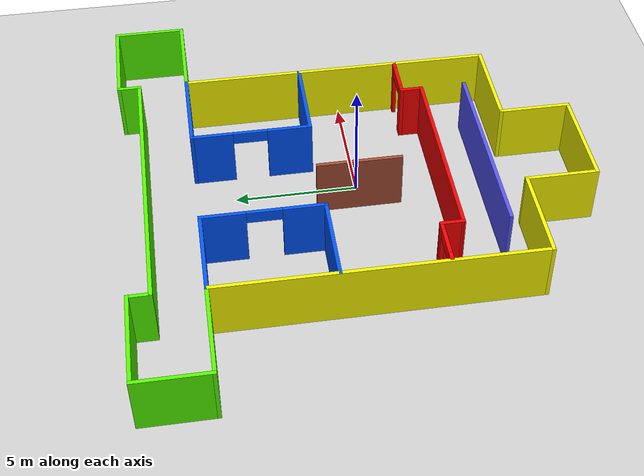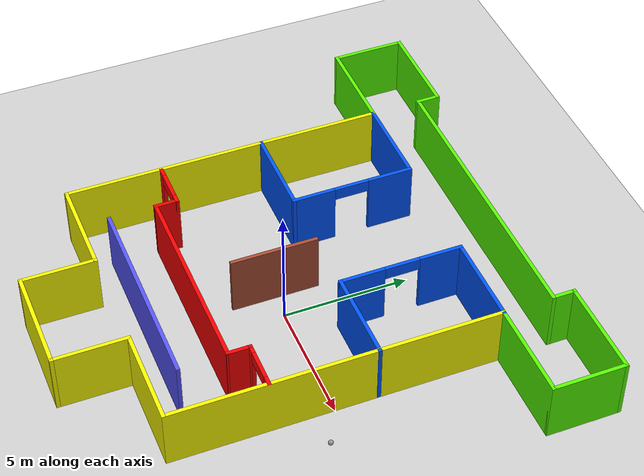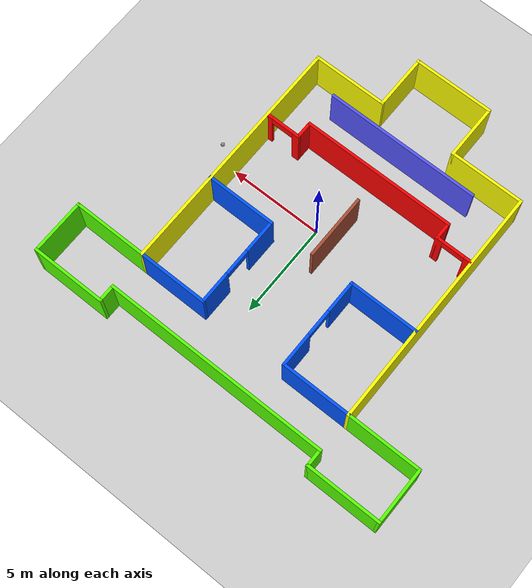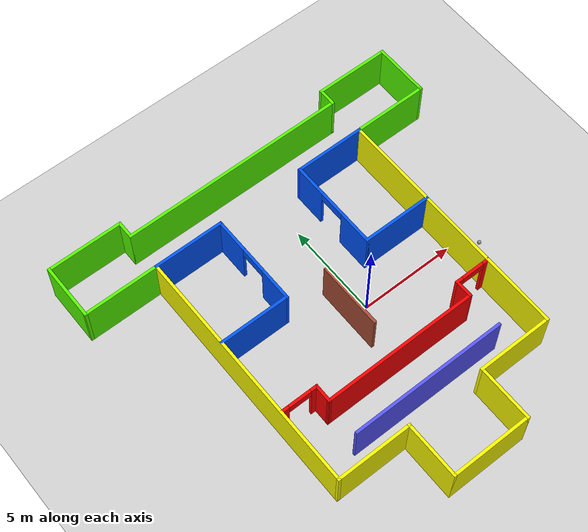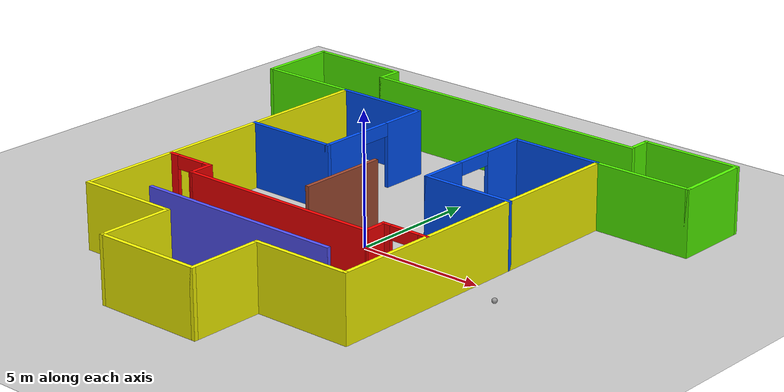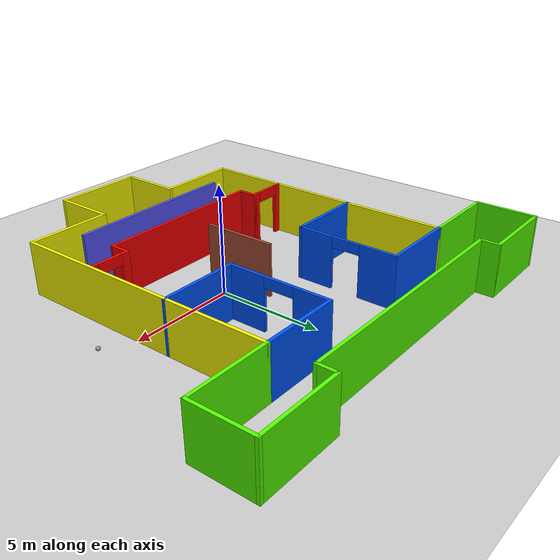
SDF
<sdf version="1.7">
 <world name="default">
  <light name="sun" type="directional">
   <pose>0 0 10 0 -0 0</pose>
   <diffuse>0.8 0.8 0.8 1</diffuse>
   <specular>0.2 0.2 0.2 1</specular>
   <attenuation>
    <range>1000</range>
    <constant>0.9</constant>
    <linear>0.01</linear>
    <quadratic>0.001</quadratic>
   </attenuation>
   <direction>-0.5 0.1 -0.9</direction>
   <spot><inner_angle>0</inner_angle><outer_angle>0</outer_angle><falloff>0</falloff></spot>
  </light>
  <model name="ground_plane">
   <static>1</static>
   <link name="link">
    <collision name="collision">
     <geometry><plane><normal>0 0 1</normal><size>100 100</size></plane></geometry>
     <surface>
      <contact><collide_bitmask>65535</collide_bitmask></contact>
      <friction><ode><mu>100</mu><mu2>50</mu2></ode></friction>
     </surface>
    </collision>
    <visual name="visual">
     <cast_shadows>0</cast_shadows>
     <geometry><plane><normal>0 0 1</normal><size>100 100</size></plane></geometry>
     <material>
      <script><uri>file://media/materials/scripts/gazebo.material</uri><name>Gazebo/Grey</name></script>
     </material>
    </visual>
   </link>
  </model>
  <gravity>0 0 -9.8</gravity>
  <magnetic_field>6e-06 2.3e-05 -4.2e-05</magnetic_field>
  <atmosphere type="adiabatic"/>
  <physics name="default_physics" default="0" type="ode">
   <max_step_size>0.001</max_step_size>
   <real_time_factor>1</real_time_factor>
   <real_time_update_rate>1000</real_time_update_rate>
  </physics>
  <scene><ambient>0.4 0.4 0.4 1</ambient><background>0.7 0.7 0.7 1</background><shadows>1</shadows></scene>
  <spherical_coordinates>
   <surface_model>EARTH_WGS84</surface_model>
   <latitude_deg>0</latitude_deg>
   <longitude_deg>0</longitude_deg>
   <elevation>0</elevation>
   <heading_deg>0</heading_deg>
  </spherical_coordinates>
  <model name="World3">
   <pose>-0.9828 0.13151 0 0 -0 0</pose>
   <link name="Wall_10">
    <collision name="Wall_10_Collision">
     <geometry><box><size>3 0.15 2.5</size></box></geometry>
     <pose>0 0 1.25 0 -0 0</pose>
    </collision>
    <visual name="Wall_10_Visual">
     <pose>0 0 1.25 0 -0 0</pose>
     <geometry><box><size>3 0.15 2.5</size></box></geometry>
     <material>
      <script><uri>file://media/materials/scripts/gazebo.material</uri><name>Gazebo/Grey</name></script>
      <ambient>0.333333 1 0 1</ambient>
     </material>
     <meta><layer>0</layer></meta>
    </visual>
    <pose>-9.775 7.85 0 0 -0 1.5708</pose>
   </link>
   <link name="Wall_11">
    <collision name="Wall_11_Collision">
     <geometry><box><size>4 0.15 2.5</size></box></geometry>
     <pose>0 0 1.25 0 -0 0</pose>
    </collision>
    <visual name="Wall_11_Visual">
     <pose>0 0 1.25 0 -0 0</pose>
     <geometry><box><size>4 0.15 2.5</size></box></geometry>
     <material>
      <script><uri>file://media/materials/scripts/gazebo.material</uri><name>Gazebo/Grey</name></script>
      <ambient>0.333333 1 0 1</ambient>
     </material>
     <meta><layer>0</layer></meta>
    </visual>
    <pose>-7.85 9.275 0 0 -0 0</pose>
   </link>
   <link name="Wall_12">
    <collision name="Wall_12_Collision">
     <geometry><box><size>1 0.15 2.5</size></box></geometry>
     <pose>0 0 1.25 0 -0 0</pose>
    </collision>
    <visual name="Wall_12_Visual">
     <pose>0 0 1.25 0 -0 0</pose>
     <geometry><box><size>1 0.15 2.5</size></box></geometry>
     <material>
      <script><uri>file://media/materials/scripts/gazebo.material</uri><name>Gazebo/Grey</name></script>
      <ambient>0.333333 1 0 1</ambient>
     </material>
     <meta><layer>0</layer></meta>
    </visual>
    <pose>-5.925 8.85 0 0 0 -1.5708</pose>
   </link>
   <link name="Wall_14">
    <collision name="Wall_14_Collision">
     <geometry><box><size>4 0.15 2.5</size></box></geometry>
     <pose>0 0 1.25 0 -0 0</pose>
    </collision>
    <visual name="Wall_14_Visual">
     <pose>0 0 1.25 0 -0 0</pose>
     <geometry><box><size>4 0.15 2.5</size></box></geometry>
     <material>
      <script><uri>file://media/materials/scripts/gazebo.material</uri><name>Gazebo/Grey</name></script>
      <ambient>0.333333 1 0 1</ambient>
     </material>
     <meta><layer>0</layer></meta>
    </visual>
    <pose>7.85 6.425 0 0 -0 0</pose>
   </link>
   <link name="Wall_15">
    <collision name="Wall_15_Collision">
     <geometry><box><size>3 0.15 2.5</size></box></geometry>
     <pose>0 0 1.25 0 -0 0</pose>
    </collision>
    <visual name="Wall_15_Visual">
     <pose>0 0 1.25 0 -0 0</pose>
     <geometry><box><size>3 0.15 2.5</size></box></geometry>
     <material>
      <script><uri>file://media/materials/scripts/gazebo.material</uri><name>Gazebo/Grey</name></script>
      <ambient>0.333333 1 0 1</ambient>
     </material>
     <meta><layer>0</layer></meta>
    </visual>
    <pose>9.775 7.85 0 0 -0 1.5708</pose>
   </link>
   <link name="Wall_16">
    <collision name="Wall_16_Collision">
     <geometry><box><size>4 0.15 2.5</size></box></geometry>
     <pose>0 0 1.25 0 -0 0</pose>
    </collision>
    <visual name="Wall_16_Visual">
     <pose>0 0 1.25 0 -0 0</pose>
     <geometry><box><size>4 0.15 2.5</size></box></geometry>
     <material>
      <script><uri>file://media/materials/scripts/gazebo.material</uri><name>Gazebo/Grey</name></script>
      <ambient>0.333333 1 0 1</ambient>
     </material>
     <meta><layer>0</layer></meta>
    </visual>
    <pose>7.85 9.275 0 0 -0 3.14159</pose>
   </link>
   <link name="Wall_17">
    <collision name="Wall_17_Collision">
     <geometry><box><size>1 0.15 2.5</size></box></geometry>
     <pose>0 0 1.25 0 -0 0</pose>
    </collision>
    <visual name="Wall_17_Visual">
     <pose>0 0 1.25 0 -0 0</pose>
     <geometry><box><size>1 0.15 2.5</size></box></geometry>
     <material>
      <script><uri>file://media/materials/scripts/gazebo.material</uri><name>Gazebo/Grey</name></script>
      <ambient>0.333333 1 0 1</ambient>
     </material>
     <meta><layer>0</layer></meta>
    </visual>
    <pose>5.925 8.85 0 0 0 -1.5708</pose>
   </link>
   <link name="Wall_19">
    <collision name="Wall_19_Collision">
     <geometry><box><size>12 0.15 2.5</size></box></geometry>
     <pose>0 0 1.25 0 -0 0</pose>
    </collision>
    <visual name="Wall_19_Visual">
     <pose>0 0 1.25 0 -0 0</pose>
     <geometry><box><size>12 0.15 2.5</size></box></geometry>
     <material>
      <script><uri>file://media/materials/scripts/gazebo.material</uri><name>Gazebo/Grey</name></script>
      <ambient>0.333333 1 0 1</ambient>
     </material>
     <meta><layer>0</layer></meta>
    </visual>
    <pose>0 8.425 0 0 -0 0</pose>
   </link>
   <link name="Wall_23">
    <collision name="Wall_23_Collision">
     <geometry><box><size>3.75 0.15 2.5</size></box></geometry>
     <pose>0 0 1.25 0 -0 0</pose>
    </collision>
    <visual name="Wall_23_Visual">
     <pose>0 0 1.25 0 -0 0</pose>
     <geometry><box><size>3.75 0.15 2.5</size></box></geometry>
     <material>
      <script><uri>file://media/materials/scripts/gazebo.material</uri><name>Gazebo/Grey</name></script>
      <ambient>0 0.333333 1 1</ambient>
     </material>
     <meta><layer>0</layer></meta>
    </visual>
    <pose>-4.125 6.425 0 0 -0 0</pose>
   </link>
   <link name="Wall_25">
    <collision name="Wall_25_Collision">
     <geometry><box><size>3.75 0.15 2.5</size></box></geometry>
     <pose>0 0 1.25 0 -0 0</pose>
    </collision>
    <visual name="Wall_25_Visual">
     <pose>0 0 1.25 0 -0 0</pose>
     <geometry><box><size>3.75 0.15 2.5</size></box></geometry>
     <material>
      <script><uri>file://media/materials/scripts/gazebo.material</uri><name>Gazebo/Grey</name></script>
      <ambient>0 0.333333 1 1</ambient>
     </material>
     <meta><layer>0</layer></meta>
    </visual>
    <pose>4.125 6.425 0 0 -0 3.14159</pose>
   </link>
   <link name="Wall_27">
    <pose>-2.325 4 0 0 0 -1.5708</pose>
    <visual name="Wall_27_Visual_0">
     <pose>-1.57957 0 1.25 0 -0 0</pose>
     <geometry><box><size>1.84085 0.15 2.5</size></box></geometry>
     <material>
      <script><uri>file://media/materials/scripts/gazebo.material</uri><name>Gazebo/Grey</name></script>
      <ambient>0 0.333333 1 1</ambient>
     </material>
     <meta><layer>0</layer></meta>
    </visual>
    <collision name="Wall_27_Collision_0">
     <geometry><box><size>1.84085 0.15 2.5</size></box></geometry>
     <pose>-1.57957 0 1.25 0 -0 0</pose>
    </collision>
    <visual name="Wall_27_Visual_1">
     <pose>1.62043 0 1.25 0 -0 0</pose>
     <geometry><box><size>1.75915 0.15 2.5</size></box></geometry>
     <material>
      <script><uri>file://media/materials/scripts/gazebo.material</uri><name>Gazebo/Grey</name></script>
      <ambient>0 0.333333 1 1</ambient>
     </material>
     <meta><layer>0</layer></meta>
    </visual>
    <collision name="Wall_27_Collision_1">
     <geometry><box><size>1.75915 0.15 2.5</size></box></geometry>
     <pose>1.62043 0 1.25 0 -0 0</pose>
    </collision>
    <visual name="Wall_27_Visual_2">
     <pose>0.04085 0 2.25 0 -0 0</pose>
     <geometry><box><size>1.4 0.15 0.5</size></box></geometry>
     <material>
      <script><uri>file://media/materials/scripts/gazebo.material</uri><name>Gazebo/Grey</name></script>
      <ambient>0 0.333333 1 1</ambient>
     </material>
     <meta><layer>0</layer></meta>
    </visual>
    <collision name="Wall_27_Collision_2">
     <geometry><box><size>1.4 0.15 0.5</size></box></geometry>
     <pose>0.04085 0 2.25 0 -0 0</pose>
    </collision>
   </link>
   <link name="Wall_28">
    <collision name="Wall_28_Collision">
     <geometry><box><size>3.75 0.15 2.5</size></box></geometry>
     <pose>0 0 1.25 0 -0 0</pose>
    </collision>
    <visual name="Wall_28_Visual">
     <pose>0 0 1.25 0 -0 0</pose>
     <geometry><box><size>3.75 0.15 2.5</size></box></geometry>
     <material>
      <script><uri>file://media/materials/scripts/gazebo.material</uri><name>Gazebo/Grey</name></script>
      <ambient>0 0.333333 1 1</ambient>
     </material>
     <meta><layer>0</layer></meta>
    </visual>
    <pose>-4.125 1.575 0 0 -0 3.14159</pose>
   </link>
   <link name="Wall_3">
    <collision name="Wall_3_Collision">
     <geometry><box><size>13 0.15 2.5</size></box></geometry>
     <pose>0 0 1.25 0 -0 0</pose>
    </collision>
    <visual name="Wall_3_Visual">
     <pose>0 0 1.25 0 -0 0</pose>
     <geometry><box><size>13 0.15 2.5</size></box></geometry>
     <material>
      <script><uri>file://media/materials/scripts/gazebo.material</uri><name>Gazebo/Grey</name></script>
      <ambient>1 1 0 1</ambient>
     </material>
     <meta><layer>0</layer></meta>
    </visual>
    <pose>-5.925 0 0 0 -0 1.5708</pose>
   </link>
   <link name="Wall_30">
    <pose>2.325 4 0 0 0 -1.5708</pose>
    <visual name="Wall_30_Visual_0">
     <pose>-1.6198 0 1.25 0 -0 0</pose>
     <geometry><box><size>1.7604 0.15 2.5</size></box></geometry>
     <material>
      <script><uri>file://media/materials/scripts/gazebo.material</uri><name>Gazebo/Grey</name></script>
      <ambient>0 0.333333 1 1</ambient>
     </material>
     <meta><layer>0</layer></meta>
    </visual>
    <collision name="Wall_30_Collision_0">
     <geometry><box><size>1.7604 0.15 2.5</size></box></geometry>
     <pose>-1.6198 0 1.25 0 -0 0</pose>
    </collision>
    <visual name="Wall_30_Visual_1">
     <pose>1.5802 0 1.25 0 -0 0</pose>
     <geometry><box><size>1.8396 0.15 2.5</size></box></geometry>
     <material>
      <script><uri>file://media/materials/scripts/gazebo.material</uri><name>Gazebo/Grey</name></script>
      <ambient>0 0.333333 1 1</ambient>
     </material>
     <meta><layer>0</layer></meta>
    </visual>
    <collision name="Wall_30_Collision_1">
     <geometry><box><size>1.8396 0.15 2.5</size></box></geometry>
     <pose>1.5802 0 1.25 0 -0 0</pose>
    </collision>
    <visual name="Wall_30_Visual_2">
     <pose>-0.039604 0 2.25 0 -0 0</pose>
     <geometry><box><size>1.4 0.15 0.5</size></box></geometry>
     <material>
      <script><uri>file://media/materials/scripts/gazebo.material</uri><name>Gazebo/Grey</name></script>
      <ambient>0 0.333333 1 1</ambient>
     </material>
     <meta><layer>0</layer></meta>
    </visual>
    <collision name="Wall_30_Collision_2">
     <geometry><box><size>1.4 0.15 0.5</size></box></geometry>
     <pose>-0.039604 0 2.25 0 -0 0</pose>
    </collision>
   </link>
   <link name="Wall_31">
    <collision name="Wall_31_Collision">
     <geometry><box><size>3.75 0.15 2.5</size></box></geometry>
     <pose>0 0 1.25 0 -0 0</pose>
    </collision>
    <visual name="Wall_31_Visual">
     <pose>0 0 1.25 0 -0 0</pose>
     <geometry><box><size>3.75 0.15 2.5</size></box></geometry>
     <material>
      <script><uri>file://media/materials/scripts/gazebo.material</uri><name>Gazebo/Grey</name></script>
      <ambient>0 0.333333 1 1</ambient>
     </material>
     <meta><layer>0</layer></meta>
    </visual>
    <pose>4.125 1.575 0 0 -0 0</pose>
   </link>
   <link name="Wall_33">
    <pose>-4.93 -2.595 0 0 -0 0</pose>
    <visual name="Wall_33_Visual_0">
     <pose>-0.798779 0 1.25 0 -0 0</pose>
     <geometry><box><size>0.402442 0.15 2.5</size></box></geometry>
     <material>
      <script><uri>file://media/materials/scripts/gazebo.material</uri><name>Gazebo/Grey</name></script>
      <ambient>1 0 0 1</ambient>
     </material>
     <meta><layer>0</layer></meta>
    </visual>
    <collision name="Wall_33_Collision_0">
     <geometry><box><size>0.402442 0.15 2.5</size></box></geometry>
     <pose>-0.798779 0 1.25 0 -0 0</pose>
    </collision>
    <visual name="Wall_33_Visual_1">
     <pose>0.801221 0 1.25 0 -0 0</pose>
     <geometry><box><size>0.397558 0.15 2.5</size></box></geometry>
     <material>
      <script><uri>file://media/materials/scripts/gazebo.material</uri><name>Gazebo/Grey</name></script>
      <ambient>1 0 0 1</ambient>
     </material>
     <meta><layer>0</layer></meta>
    </visual>
    <collision name="Wall_33_Collision_1">
     <geometry><box><size>0.397558 0.15 2.5</size></box></geometry>
     <pose>0.801221 0 1.25 0 -0 0</pose>
    </collision>
    <visual name="Wall_33_Visual_2">
     <pose>0.002442 0 2.25 0 -0 0</pose>
     <geometry><box><size>1.2 0.15 0.5</size></box></geometry>
     <material>
      <script><uri>file://media/materials/scripts/gazebo.material</uri><name>Gazebo/Grey</name></script>
      <ambient>1 0 0 1</ambient>
     </material>
     <meta><layer>0</layer></meta>
    </visual>
    <collision name="Wall_33_Collision_2">
     <geometry><box><size>1.2 0.15 0.5</size></box></geometry>
     <pose>0.002442 0 2.25 0 -0 0</pose>
    </collision>
   </link>
   <link name="Wall_34">
    <collision name="Wall_34_Collision">
     <geometry><box><size>1 0.15 2.5</size></box></geometry>
     <pose>0 0 1.25 0 -0 0</pose>
    </collision>
    <visual name="Wall_34_Visual">
     <pose>0 0 1.25 0 -0 0</pose>
     <geometry><box><size>1 0.15 2.5</size></box></geometry>
     <material>
      <script><uri>file://media/materials/scripts/gazebo.material</uri><name>Gazebo/Grey</name></script>
      <ambient>1 0 0 1</ambient>
     </material>
     <meta><layer>0</layer></meta>
    </visual>
    <pose>-4.005 -3.02 0 0 0 -1.5708</pose>
   </link>
   <link name="Wall_36">
    <pose>5 -2.585 0 0 -0 3.14159</pose>
    <visual name="Wall_36_Visual_0">
     <pose>-0.799245 0 1.25 0 -0 0</pose>
     <geometry><box><size>0.40151 0.15 2.5</size></box></geometry>
     <material>
      <script><uri>file://media/materials/scripts/gazebo.material</uri><name>Gazebo/Grey</name></script>
      <ambient>1 0 0 1</ambient>
     </material>
     <meta><layer>0</layer></meta>
    </visual>
    <collision name="Wall_36_Collision_0">
     <geometry><box><size>0.40151 0.15 2.5</size></box></geometry>
     <pose>-0.799245 0 1.25 0 -0 0</pose>
    </collision>
    <visual name="Wall_36_Visual_1">
     <pose>0.800755 0 1.25 0 -0 0</pose>
     <geometry><box><size>0.39849 0.15 2.5</size></box></geometry>
     <material>
      <script><uri>file://media/materials/scripts/gazebo.material</uri><name>Gazebo/Grey</name></script>
      <ambient>1 0 0 1</ambient>
     </material>
     <meta><layer>0</layer></meta>
    </visual>
    <collision name="Wall_36_Collision_1">
     <geometry><box><size>0.39849 0.15 2.5</size></box></geometry>
     <pose>0.800755 0 1.25 0 -0 0</pose>
    </collision>
    <visual name="Wall_36_Visual_2">
     <pose>0.00151 0 2.25 0 -0 0</pose>
     <geometry><box><size>1.2 0.15 0.5</size></box></geometry>
     <material>
      <script><uri>file://media/materials/scripts/gazebo.material</uri><name>Gazebo/Grey</name></script>
      <ambient>1 0 0 1</ambient>
     </material>
     <meta><layer>0</layer></meta>
    </visual>
    <collision name="Wall_36_Collision_2">
     <geometry><box><size>1.2 0.15 0.5</size></box></geometry>
     <pose>0.00151 0 2.25 0 -0 0</pose>
    </collision>
   </link>
   <link name="Wall_37">
    <collision name="Wall_37_Collision">
     <geometry><box><size>1 0.15 2.5</size></box></geometry>
     <pose>0 0 1.25 0 -0 0</pose>
    </collision>
    <visual name="Wall_37_Visual">
     <pose>0 0 1.25 0 -0 0</pose>
     <geometry><box><size>1 0.15 2.5</size></box></geometry>
     <material>
      <script><uri>file://media/materials/scripts/gazebo.material</uri><name>Gazebo/Grey</name></script>
      <ambient>1 0 0 1</ambient>
     </material>
     <meta><layer>0</layer></meta>
    </visual>
    <pose>4.075 -3.01 0 0 0 -1.5708</pose>
   </link>
   <link name="Wall_38">
    <collision name="Wall_38_Collision">
     <geometry><box><size>8.23001 0.15 2.5</size></box></geometry>
     <pose>0 0 1.25 0 -0 0</pose>
    </collision>
    <visual name="Wall_38_Visual">
     <pose>0 0 1.25 0 -0 0</pose>
     <geometry><box><size>8.23001 0.15 2.5</size></box></geometry>
     <material>
      <script><uri>file://media/materials/scripts/gazebo.material</uri><name>Gazebo/Grey</name></script>
      <ambient>1 0 0 1</ambient>
     </material>
     <meta><layer>0</layer></meta>
    </visual>
    <pose>0.035 -3.44 0 0 0 -3.14036</pose>
   </link>
   <link name="Wall_41">
    <collision name="Wall_41_Collision">
     <geometry><box><size>8.25 0.15 2.5</size></box></geometry>
     <pose>0 0 1.25 0 -0 0</pose>
    </collision>
    <visual name="Wall_41_Visual">
     <pose>0 0 1.25 0 -0 0</pose>
     <geometry><box><size>8.25 0.15 2.5</size></box></geometry>
     <material>
      <script><uri>file://media/materials/scripts/gazebo.material</uri><name>Gazebo/Grey</name></script>
      <ambient>0.333333 0.333333 1 1</ambient>
     </material>
     <meta><layer>0</layer></meta>
    </visual>
    <pose>0.045 -5.295 0 0 -0 0</pose>
   </link>
   <link name="Wall_5">
    <collision name="Wall_5_Collision">
     <geometry><box><size>13 0.15 2.5</size></box></geometry>
     <pose>0 0 1.25 0 -0 0</pose>
    </collision>
    <visual name="Wall_5_Visual">
     <pose>0 0 1.25 0 -0 0</pose>
     <geometry><box><size>13 0.15 2.5</size></box></geometry>
     <material>
      <script><uri>file://media/materials/scripts/gazebo.material</uri><name>Gazebo/Grey</name></script>
      <ambient>1 1 0 1</ambient>
     </material>
     <meta><layer>0</layer></meta>
    </visual>
    <pose>5.925 0 0 0 -0 1.5708</pose>
   </link>
   <link name="Wall_51">
    <collision name="Wall_51_Collision">
     <geometry><box><size>3.5 0.15 2.5</size></box></geometry>
     <pose>0 0 1.25 0 -0 0</pose>
    </collision>
    <visual name="Wall_51_Visual">
     <pose>0 0 1.25 0 -0 0</pose>
     <geometry><box><size>3.5 0.15 2.5</size></box></geometry>
     <material>
      <script><uri>file://media/materials/scripts/gazebo.material</uri><name>Gazebo/Bricks</name></script>
      <ambient>1 1 1 1</ambient>
     </material>
     <meta><layer>0</layer></meta>
    </visual>
    <pose>-0.075 -0.1 0 0 0 -1.5708</pose>
   </link>
   <link name="Wall_53">
    <collision name="Wall_53_Collision">
     <geometry><box><size>4 0.15 2.5</size></box></geometry>
     <pose>0 0 1.25 0 -0 0</pose>
    </collision>
    <visual name="Wall_53_Visual">
     <pose>0 0 1.25 0 -0 0</pose>
     <geometry><box><size>4 0.15 2.5</size></box></geometry>
     <material>
      <script><uri>file://media/materials/scripts/gazebo.material</uri><name>Gazebo/Grey</name></script>
      <ambient>1 1 0 1</ambient>
     </material>
     <meta><layer>0</layer></meta>
    </visual>
    <pose>-4 -6.425 0 0 -0 0</pose>
   </link>
   <link name="Wall_56">
    <collision name="Wall_56_Collision">
     <geometry><box><size>4 0.15 2.5</size></box></geometry>
     <pose>0 0 1.25 0 -0 0</pose>
    </collision>
    <visual name="Wall_56_Visual">
     <pose>0 0 1.25 0 -0 0</pose>
     <geometry><box><size>4 0.15 2.5</size></box></geometry>
     <material>
      <script><uri>file://media/materials/scripts/gazebo.material</uri><name>Gazebo/Grey</name></script>
      <ambient>1 1 0 1</ambient>
     </material>
     <meta><layer>0</layer></meta>
    </visual>
    <pose>4 -6.425 0 0 -0 3.14159</pose>
   </link>
   <link name="Wall_57">
    <collision name="Wall_57_Collision">
     <geometry><box><size>3 0.15 2.5</size></box></geometry>
     <pose>0 0 1.25 0 -0 0</pose>
    </collision>
    <visual name="Wall_57_Visual">
     <pose>0 0 1.25 0 -0 0</pose>
     <geometry><box><size>3 0.15 2.5</size></box></geometry>
     <material>
      <script><uri>file://media/materials/scripts/gazebo.material</uri><name>Gazebo/Grey</name></script>
      <ambient>1 1 0 1</ambient>
     </material>
     <meta><layer>0</layer></meta>
    </visual>
    <pose>2.075 -7.85 0 0 0 -1.5708</pose>
   </link>
   <link name="Wall_59">
    <collision name="Wall_59_Collision">
     <geometry><box><size>3 0.15 2.5</size></box></geometry>
     <pose>0 0 1.25 0 -0 0</pose>
    </collision>
    <visual name="Wall_59_Visual">
     <pose>0 0 1.25 0 -0 0</pose>
     <geometry><box><size>3 0.15 2.5</size></box></geometry>
     <material>
      <script><uri>file://media/materials/scripts/gazebo.material</uri><name>Gazebo/Grey</name></script>
      <ambient>1 1 0 1</ambient>
     </material>
     <meta><layer>0</layer></meta>
    </visual>
    <pose>-2.075 -7.85 0 0 0 -1.5708</pose>
   </link>
   <link name="Wall_60">
    <collision name="Wall_60_Collision">
     <geometry><box><size>4.3 0.15 2.5</size></box></geometry>
     <pose>0 0 1.25 0 -0 0</pose>
    </collision>
    <visual name="Wall_60_Visual">
     <pose>0 0 1.25 0 -0 0</pose>
     <geometry><box><size>4.3 0.15 2.5</size></box></geometry>
     <material>
      <script><uri>file://media/materials/scripts/gazebo.material</uri><name>Gazebo/Grey</name></script>
      <ambient>1 1 0 1</ambient>
     </material>
     <meta><layer>0</layer></meta>
    </visual>
    <pose>0 -9.275 0 0 -0 0</pose>
   </link>
   <link name="Wall_7">
    <collision name="Wall_7_Collision">
     <geometry><box><size>4 0.15 2.5</size></box></geometry>
     <pose>0 0 1.25 0 -0 0</pose>
    </collision>
    <visual name="Wall_7_Visual">
     <pose>0 0 1.25 0 -0 0</pose>
     <geometry><box><size>4 0.15 2.5</size></box></geometry>
     <material>
      <script><uri>file://media/materials/scripts/gazebo.material</uri><name>Gazebo/Grey</name></script>
      <ambient>0.333333 1 0 1</ambient>
     </material>
     <meta><layer>0</layer></meta>
    </visual>
    <pose>-7.85 6.425 0 0 -0 3.14159</pose>
   </link>
   <static>1</static>
  </model>
  <model name="my_ball">
   <link name="link_0">
    <inertial>
     <mass>1</mass>
     <inertia><ixx>0.1</ixx><ixy>0</ixy><ixz>0</ixz><iyy>0.1</iyy><iyz>0</iyz><izz>0.1</izz></inertia>
    </inertial>
    <visual name="visual">
     <geometry><sphere><radius>0.1</radius></sphere></geometry>
     <material>
      <lighting>1</lighting>
      <script><uri>file://media/materials/scripts/gazebo.material</uri><name>Gazebo/Grey</name></script>
      <shader type="pixel"><normal_map>__default__</normal_map></shader>
      <ambient>1 1 1 1</ambient>
      <diffuse>1 1 1 1</diffuse>
      <specular>1 1 1 1</specular>
      <emissive>1 1 1 1</emissive>
     </material>
    </visual>
    <collision name="collision">
     <geometry><sphere><radius>0.1</radius></sphere></geometry>
     <surface>
      <friction>
       <ode><mu>1</mu><mu2>1</mu2><fdir1>0 0 0</fdir1><slip1>0</slip1><slip2>0</slip2></ode>
       <torsional>
        <coefficient>1</coefficient>
        <patch_radius>0</patch_radius>
        <surface_radius>0</surface_radius>
        <use_patch_radius>1</use_patch_radius>
        <ode><slip>0</slip></ode>
       </torsional>
      </friction>
      <bounce><restitution_coefficient>0</restitution_coefficient><threshold>1e+06</threshold></bounce>
      <contact>
       <collide_without_contact>0</collide_without_contact>
       <collide_without_contact_bitmask>1</collide_without_contact_bitmask>
       <collide_bitmask>1</collide_bitmask>
       <ode>
        <soft_cfm>0</soft_cfm>
        <soft_erp>0.2</soft_erp>
        <kp>1e+13</kp>
        <kd>1</kd>
        <max_vel>0.01</max_vel>
        <min_depth>0</min_depth>
       </ode>
       <bullet>
        <split_impulse>1</split_impulse>
        <split_impulse_penetration_threshold>-0.01</split_impulse_penetration_threshold>
        <soft_cfm>0</soft_cfm>
        <soft_erp>0.2</soft_erp>
        <kp>1e+13</kp>
        <kd>1</kd>
       </bullet>
      </contact>
     </surface>
    </collision>
   </link>
   <static>0</static>
   <pose>6.36698 -0.718466 0.1 0 -0 0</pose>
  </model>
 </world>
</sdf>
